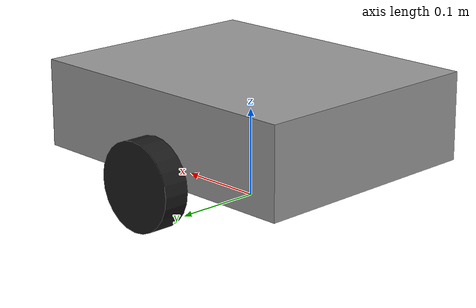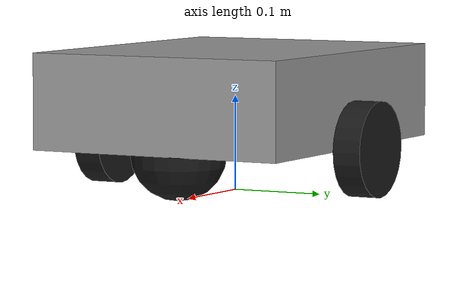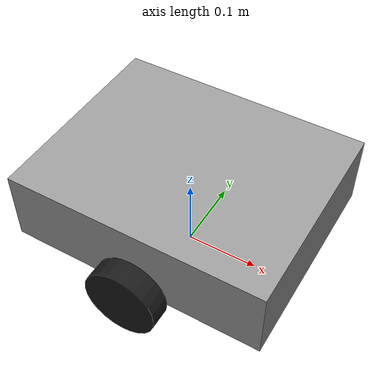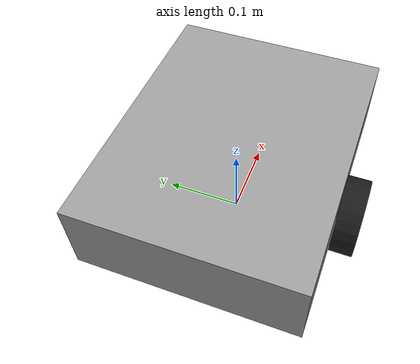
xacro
<?xml version="1.0"?>
<robot xmlns:xacro="http://www.ros.org/wiki/xacro" name="amr">

  <xacro:property name="base_length" value="0.35"/>
  <xacro:property name="base_width"  value="0.28"/>
  <xacro:property name="base_height" value="0.10"/>

  <xacro:property name="wheel_radius" value="0.05"/>
  <xacro:property name="wheel_width"  value="0.03"/>
  <xacro:property name="wheel_y" value="${base_width/2 + wheel_width/2}"/>
  <xacro:property name="wheel_sep" value="${2*wheel_y}"/>

  <material name="gray"><color rgba="0.6 0.6 0.6 1.0"/></material>
  <material name="black"><color rgba="0.1 0.1 0.1 1.0"/></material>

  <link name="base_footprint"/>

  <joint name="base_joint" type="fixed">
    <parent link="base_footprint"/>
    <child link="base_link"/>
    <origin xyz="0 0 0" rpy="0 0 0"/>
  </joint>

  <link name="base_link">
    <visual>
      <origin xyz="0 0 ${base_height/2 + wheel_radius}" rpy="0 0 0"/>
      <geometry>
        <box size="${base_length} ${base_width} ${base_height}"/>
      </geometry>
      <material name="gray"/>
    </visual>
    <collision>
      <origin xyz="0 0 ${base_height/2 + wheel_radius}" rpy="0 0 0"/>
      <geometry>
        <box size="${base_length} ${base_width} ${base_height}"/>
      </geometry>
    </collision>
    <inertial>
      <origin xyz="0 0 ${base_height/2 + wheel_radius}" rpy="0 0 0"/>
      <mass value="8.0"/>
      <inertia ixx="0.12" ixy="0.0" ixz="0.0" iyy="0.20" iyz="0.0" izz="0.25"/>
    </inertial>
  </link>

  <link name="left_wheel_link">
    <visual>
      <origin xyz="0 0 0" rpy="1.5708 0 0"/>
      <geometry>
        <cylinder radius="${wheel_radius}" length="${wheel_width}"/>
      </geometry>
      <material name="black"/>
    </visual>
    <collision>
      <origin xyz="0 0 0" rpy="1.5708 0 0"/>
      <geometry>
        <cylinder radius="${wheel_radius}" length="${wheel_width}"/>
      </geometry>
    </collision>
    <inertial>
      <origin xyz="0 0 0" rpy="0 0 0"/>
      <mass value="0.5"/>
      <inertia ixx="0.001" ixy="0.0" ixz="0.0" iyy="0.001" iyz="0.0" izz="0.001"/>
    </inertial>
  </link>

  <joint name="left_wheel_joint" type="continuous">
    <parent link="base_link"/>
    <child link="left_wheel_link"/>
    <origin xyz="0 ${wheel_y} ${wheel_radius}" rpy="0 0 0"/>
    <axis xyz="0 1 0"/>
  </joint>

  <link name="right_wheel_link">
    <visual>
      <origin xyz="0 0 0" rpy="1.5708 0 0"/>
      <geometry>
        <cylinder radius="${wheel_radius}" length="${wheel_width}"/>
      </geometry>
      <material name="black"/>
    </visual>
    <collision>
      <origin xyz="0 0 0" rpy="1.5708 0 0"/>
      <geometry>
        <cylinder radius="${wheel_radius}" length="${wheel_width}"/>
      </geometry>
    </collision>
    <inertial>
      <origin xyz="0 0 0" rpy="0 0 0"/>
      <mass value="0.5"/>
      <inertia ixx="0.001" ixy="0.0" ixz="0.0" iyy="0.001" iyz="0.0" izz="0.001"/>
    </inertial>
  </link>

  <joint name="right_wheel_joint" type="continuous">
    <parent link="base_link"/>
    <child link="right_wheel_link"/>
    <origin xyz="0 -${wheel_y} ${wheel_radius}" rpy="0 0 0"/>
    <axis xyz="0 1 0"/>
  </joint>

  <link name="front_caster">
    <visual>
      <geometry><sphere radius="0.05"/></geometry>
      <material name="black"/>
    </visual>
    <collision>
      <geometry><sphere radius="0.05"/></geometry>
    </collision>
    <inertial>
      <mass value="0.1"/>
      <inertia ixx="0.0001" ixy="0.0" ixz="0.0" iyy="0.0001" iyz="0.0" izz="0.0001"/>
    </inertial>
  </link>

  <joint name="front_caster_joint" type="fixed">
    <parent link="base_link"/>
    <child link="front_caster"/>
    <origin xyz="0.12 0 0.05" rpy="0 0 0"/>
  </joint>

  <link name="lidar_link">
    <inertial>
      <origin xyz="0 0 0" rpy="0 0 0"/>
      <mass value="0.1"/>
      <inertia ixx="1e-5" ixy="0.0" ixz="0.0" iyy="1e-5" iyz="0.0" izz="1e-5"/>
    </inertial>
  </link>

  <joint name="lidar_joint" type="fixed">
    <parent link="base_link"/>
    <child link="lidar_link"/>
    <origin xyz="${base_length/2 - 0.05} 0 ${base_height + 0.02}" rpy="0 0 0"/>
  </joint>

  <ros2_control name="GazeboSystem" type="system">
    <hardware>
      <plugin>gazebo_ros2_control/GazeboSystem</plugin>
    </hardware>
    <joint name="left_wheel_joint">
      <command_interface name="velocity"/>
      <state_interface name="position"/>
      <state_interface name="velocity"/>
    </joint>
    <joint name="right_wheel_joint">
      <command_interface name="velocity"/>
      <state_interface name="position"/>
      <state_interface name="velocity"/>
    </joint>
  </ros2_control>

  <gazebo>
    <plugin name="gazebo_ros2_control" filename="libgazebo_ros2_control.so">
      <parameters>$(find amr_control)/config/diff_drive_controller.yaml</parameters>
      <ros>
        <namespace>/</namespace>
      </ros>
    </plugin>
  </gazebo>

  <gazebo reference="left_wheel_link">
    <mu1>1.0</mu1>
    <mu2>1.0</mu2>
  </gazebo>
  <gazebo reference="right_wheel_link">
    <mu1>1.0</mu1>
    <mu2>1.0</mu2>
  </gazebo>
  <gazebo reference="front_caster">
    <mu1>0.001</mu1>
    <mu2>0.001</mu2>
  </gazebo>

</robot>
